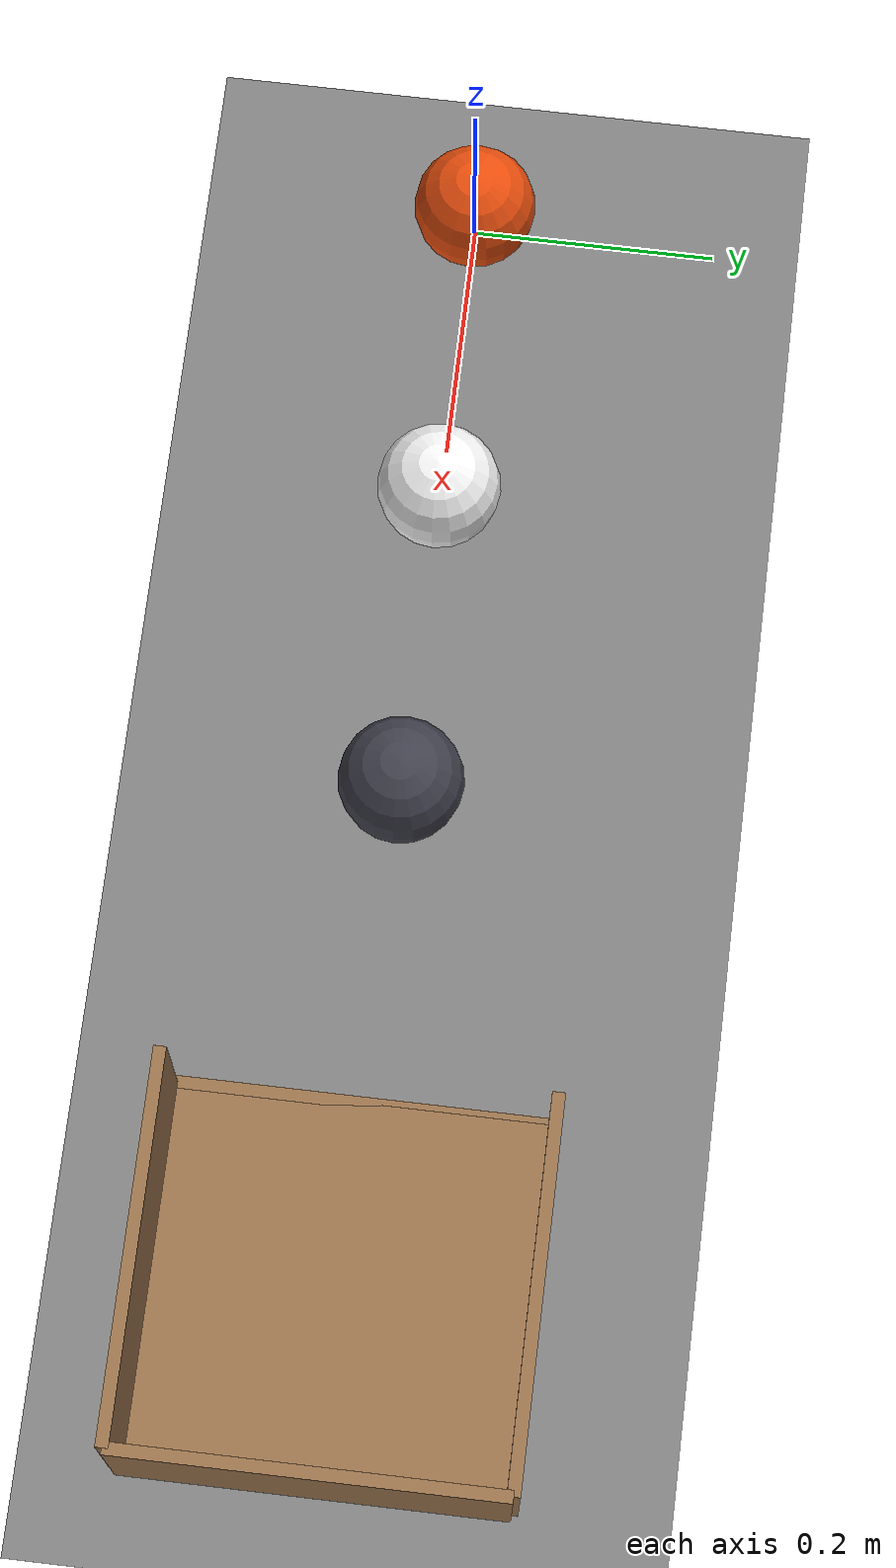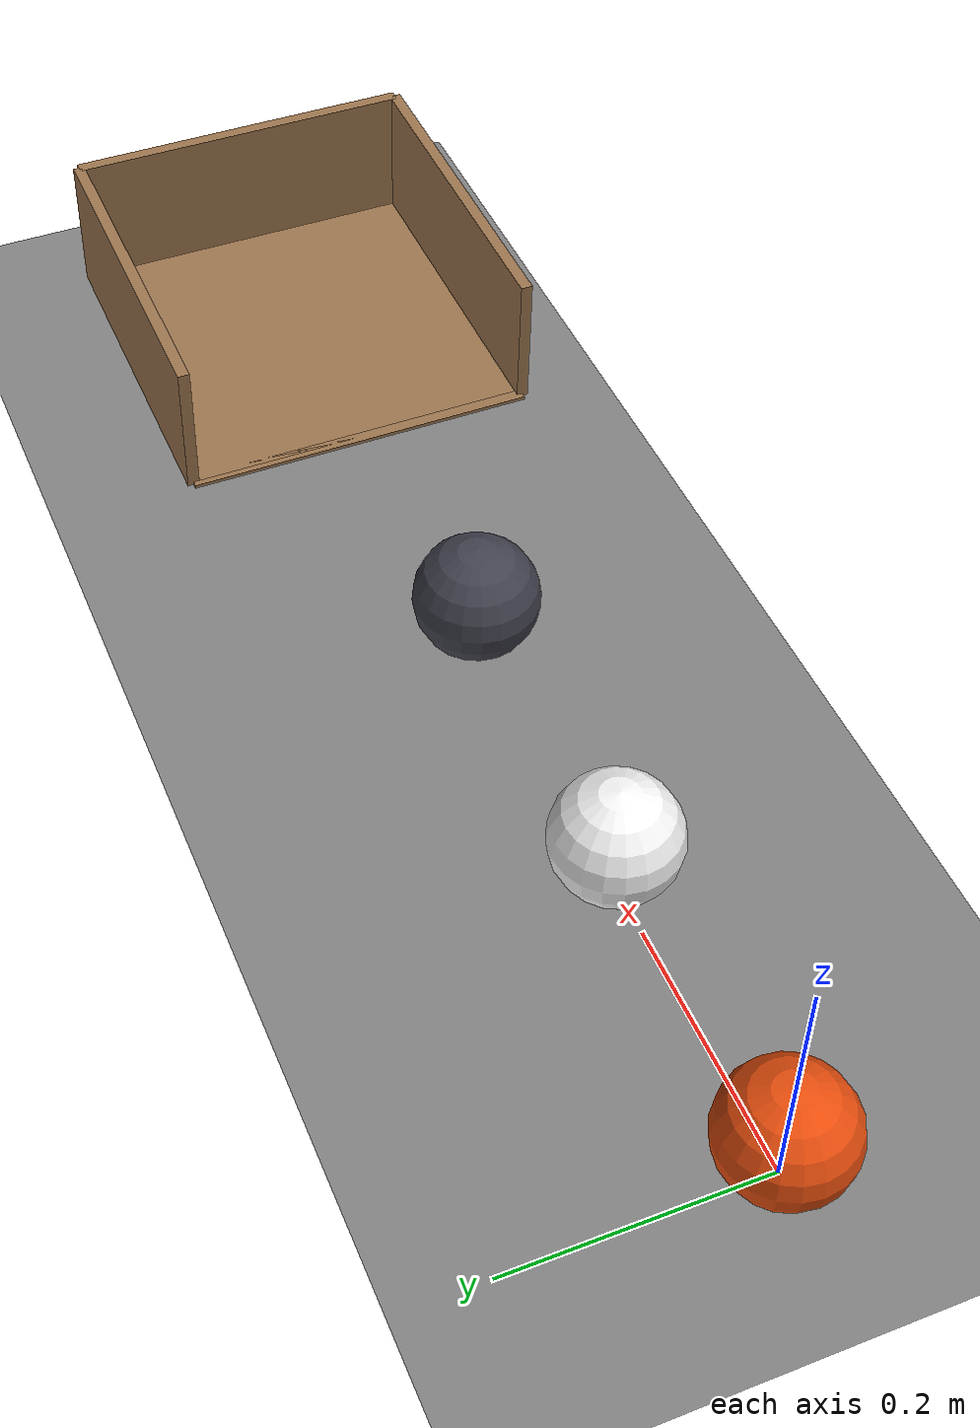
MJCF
<mujoco model="three_balls_into_a_cup">
  <compiler angle="radian"/>
  <option timestep="0.002"/>
  <worldbody>
    <geom name="floor" type="plane" size="6 6 0.1" friction="0.8 0.002 0.0003"/>
    <body name="ball1" pos="0 0 0.05">
      <freejoint/>
      <geom name="ball1" type="sphere" pos="0 0 0" size="0.05" mass="0.15" condim="6" friction="0.8 0.002 0.0003" solref="0.01 0.2" rgba="0.9 0.3 0.05 1"/>
    </body>
    <body name="ball2" pos="0.25 0 0.05">
      <freejoint/>
      <geom name="ball2" type="sphere" pos="0 0 0" size="0.05" mass="0.15" condim="6" friction="0.8 0.002 0.0003" solref="0.01 0.2" rgba="0.95 0.95 0.95 1"/>
    </body>
    <body name="ball3" pos="0.5 0 0.05">
      <freejoint/>
      <geom name="ball3" type="sphere" pos="0 0 0" size="0.05" mass="0.15" condim="6" friction="0.8 0.002 0.0003" solref="0.01 0.2" rgba="0.25 0.25 0.3 1"/>
    </body>
    <body name="cup">
      <geom name="cup_base" type="box" pos="0.9 0 0.0015" size="0.15 0.15 0.0015" friction="0.9 0.02 0.02" solref="0.01 1" rgba="0.6 0.45 0.3 1"/>
      <geom name="cup_near_wall" type="box" pos="0.75 0 0.0015" size="0.005 0.15 0.0015" friction="0.9 0.02 0.02" solref="0.01 1" rgba="0.6 0.45 0.3 1"/>
      <geom name="cup_far_wall" type="box" pos="1.05 0 0.06" size="0.005 0.15 0.06" friction="0.9 0.02 0.02" solref="0.01 1" rgba="0.6 0.45 0.3 1"/>
      <geom name="cup_left_wall" type="box" pos="0.9 0.15 0.06" size="0.15 0.005 0.06" friction="0.9 0.02 0.02" solref="0.01 1" rgba="0.6 0.45 0.3 1"/>
      <geom name="cup_right_wall" type="box" pos="0.9 -0.15 0.06" size="0.15 0.005 0.06" friction="0.9 0.02 0.02" solref="0.01 1" rgba="0.6 0.45 0.3 1"/>
    </body>
  </worldbody>
  <keyframe>
    <key name="start" qpos="0 0 0.05 1 0 0 0 0.25 0 0.05 1 0 0 0 0.5 0 0.05 1 0 0 0" qvel="4 0 0 0 80 0 0 0 0 0 0 0 0 0 0 0 0 0"/>
  </keyframe>
</mujoco>
